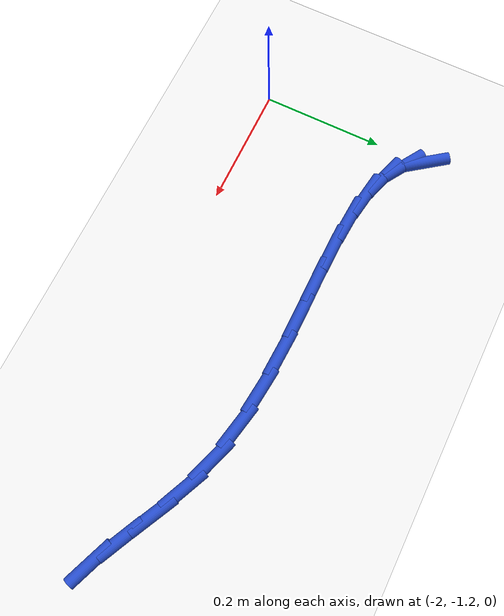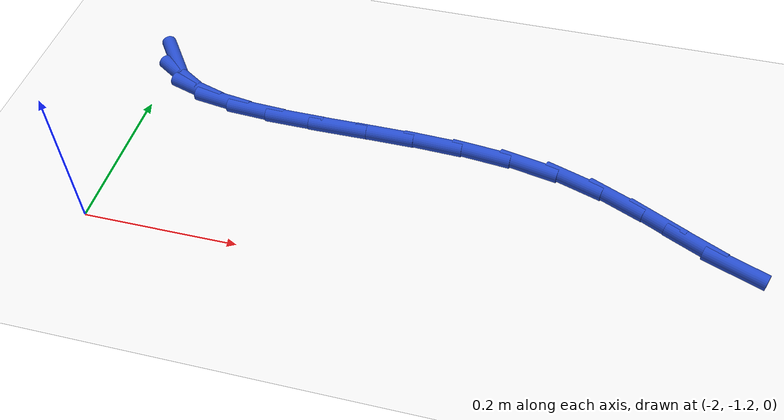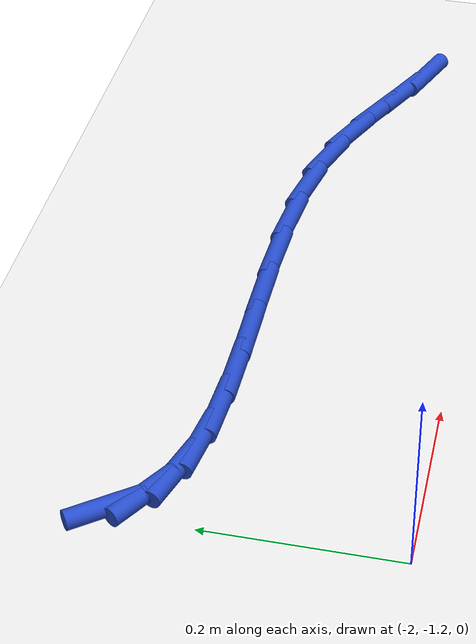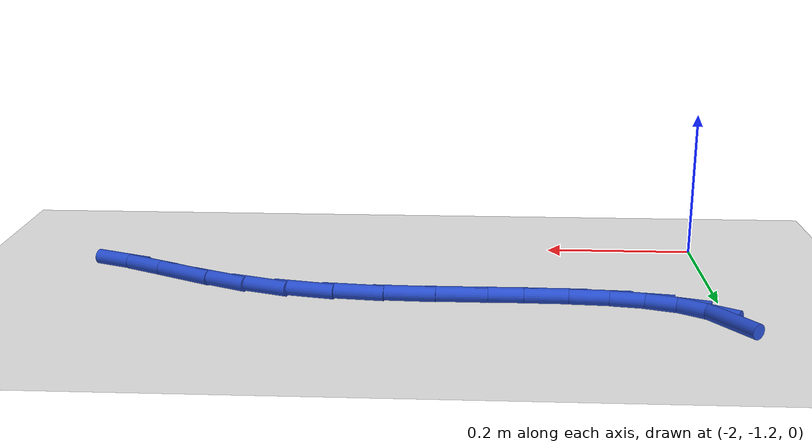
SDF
<sdf version="1.6">
 <world name="default">
  <model name="ground_plane">
   <static>1</static>
   <link name="link">
    <collision name="collision">
     <geometry><plane><normal>0 0 1</normal><size>100 100</size></plane></geometry>
     <surface><friction><ode><mu>100</mu><mu2>50</mu2></ode></friction></surface>
    </collision>
    <visual name="visual">
     <cast_shadows>0</cast_shadows>
     <geometry><plane><normal>0 0 1</normal><size>100 100</size></plane></geometry>
     <material>
      <script><uri>file://media/materials/scripts/gazebo.material</uri><name>Gazebo/WhiteGlow</name></script>
     </material>
    </visual>
   </link>
  </model>
  <model name="line">
   <link name="link_82">
    <pose>-1.998404253611071 -0.9151580391471993 0.01 0 1.57 -0.932881115643173</pose>
    <collision name="collision">
     <geometry><cylinder><radius>0.01</radius><length>0.08</length></cylinder></geometry>
    </collision>
    <visual name="visual">
     <material>
      <script><name>Gazebo/Blue</name><uri>file://media/materials/scripts/gazebo.material</uri></script>
     </material>
     <geometry><cylinder><radius>0.01</radius><length>0.08</length></cylinder></geometry>
    </visual>
   </link>
   <link name="link_83">
    <pose>-1.9763753910214394 -0.9448742326402765 0.01 0 1.57 -0.5589556336698283</pose>
    <collision name="collision">
     <geometry><cylinder><radius>0.01</radius><length>0.08</length></cylinder></geometry>
    </collision>
    <visual name="visual">
     <material>
      <script><name>Gazebo/Blue</name><uri>file://media/materials/scripts/gazebo.material</uri></script>
     </material>
     <geometry><cylinder><radius>0.01</radius><length>0.08</length></cylinder></geometry>
    </visual>
   </link>
   <link name="link_84">
    <pose>-1.943292644380378 -0.965567345615158 0.01 0 1.57 -0.3025468930642826</pose>
    <collision name="collision">
     <geometry><cylinder><radius>0.01</radius><length>0.08</length></cylinder></geometry>
    </collision>
    <visual name="visual">
     <material>
      <script><name>Gazebo/Blue</name><uri>file://media/materials/scripts/gazebo.material</uri></script>
     </material>
     <geometry><cylinder><radius>0.01</radius><length>0.08</length></cylinder></geometry>
    </visual>
   </link>
   <link name="link_85">
    <pose>-1.9007600394313051 -0.9788430075514056 0.01 0 1.57 -0.14719301802026089</pose>
    <collision name="collision">
     <geometry><cylinder><radius>0.01</radius><length>0.08</length></cylinder></geometry>
    </collision>
    <visual name="visual">
     <material>
      <script><name>Gazebo/Blue</name><uri>file://media/materials/scripts/gazebo.material</uri></script>
     </material>
     <geometry><cylinder><radius>0.01</radius><length>0.08</length></cylinder></geometry>
    </visual>
   </link>
   <link name="link_86">
    <pose>-1.8503875262607075 -0.9863115048079426 0.01 0 1.57 -0.05773569309302215</pose>
    <collision name="collision">
     <geometry><cylinder><radius>0.01</radius><length>0.08</length></cylinder></geometry>
    </collision>
    <visual name="visual">
     <material>
      <script><name>Gazebo/Blue</name><uri>file://media/materials/scripts/gazebo.material</uri></script>
     </material>
     <geometry><cylinder><radius>0.01</radius><length>0.08</length></cylinder></geometry>
    </visual>
   </link>
   <link name="link_87">
    <pose>-1.7937850549550742 -0.9895831237436913 0.01 0 1.57 -0.01118867441353531</pose>
    <collision name="collision">
     <geometry><cylinder><radius>0.01</radius><length>0.08</length></cylinder></geometry>
    </collision>
    <visual name="visual">
     <material>
      <script><name>Gazebo/Blue</name><uri>file://media/materials/scripts/gazebo.material</uri></script>
     </material>
     <geometry><cylinder><radius>0.01</radius><length>0.08</length></cylinder></geometry>
    </visual>
   </link>
   <link name="link_88">
    <pose>-1.7325625756008924 -0.9902681507175748 0.01 0 1.57 0.004534720947328678</pose>
    <collision name="collision">
     <geometry><cylinder><radius>0.01</radius><length>0.08</length></cylinder></geometry>
    </collision>
    <visual name="visual">
     <material>
      <script><name>Gazebo/Blue</name><uri>file://media/materials/scripts/gazebo.material</uri></script>
     </material>
     <geometry><cylinder><radius>0.01</radius><length>0.08</length></cylinder></geometry>
    </visual>
   </link>
   <link name="link_89">
    <pose>-1.6683300382846502 -0.9899768720885158 0.01 0 1.57 -0.005221471898071363</pose>
    <collision name="collision">
     <geometry><cylinder><radius>0.01</radius><length>0.08</length></cylinder></geometry>
    </collision>
    <visual name="visual">
     <material>
      <script><name>Gazebo/Blue</name><uri>file://media/materials/scripts/gazebo.material</uri></script>
     </material>
     <geometry><cylinder><radius>0.01</radius><length>0.08</length></cylinder></geometry>
    </visual>
   </link>
   <link name="link_90">
    <pose>-1.6026973930928339 -0.9903195742154371 0.01 0 1.57 -0.039521727342768265</pose>
    <collision name="collision">
     <geometry><cylinder><radius>0.01</radius><length>0.08</length></cylinder></geometry>
    </collision>
    <visual name="visual">
     <material>
      <script><name>Gazebo/Blue</name><uri>file://media/materials/scripts/gazebo.material</uri></script>
     </material>
     <geometry><cylinder><radius>0.01</radius><length>0.08</length></cylinder></geometry>
    </visual>
   </link>
   <link name="link_91">
    <pose>-1.537274590111932 -0.9929065434572619 0.01 0 1.57 -0.10093285779292706</pose>
    <collision name="collision">
     <geometry><cylinder><radius>0.01</radius><length>0.08</length></cylinder></geometry>
    </collision>
    <visual name="visual">
     <material>
      <script><name>Gazebo/Blue</name><uri>file://media/materials/scripts/gazebo.material</uri></script>
     </material>
     <geometry><cylinder><radius>0.01</radius><length>0.08</length></cylinder></geometry>
    </visual>
   </link>
   <link name="link_92">
    <pose>-1.4736715794284334 -0.9993480661729128 0.01 0 1.57 -0.19534469463696832</pose>
    <collision name="collision">
     <geometry><cylinder><radius>0.01</radius><length>0.08</length></cylinder></geometry>
    </collision>
    <visual name="visual">
     <material>
      <script><name>Gazebo/Blue</name><uri>file://media/materials/scripts/gazebo.material</uri></script>
     </material>
     <geometry><cylinder><radius>0.01</radius><length>0.08</length></cylinder></geometry>
    </visual>
   </link>
   <link name="link_93">
    <pose>-1.413498311128825 -1.0112544287213128 0.01 0 1.57 -0.32088536971315895</pose>
    <collision name="collision">
     <geometry><cylinder><radius>0.01</radius><length>0.08</length></cylinder></geometry>
    </collision>
    <visual name="visual">
     <material>
      <script><name>Gazebo/Blue</name><uri>file://media/materials/scripts/gazebo.material</uri></script>
     </material>
     <geometry><cylinder><radius>0.01</radius><length>0.08</length></cylinder></geometry>
    </visual>
   </link>
   <link name="link_94">
    <pose>-1.3580180307038645 -1.029694536794448 0.01 0 1.57 -0.42025129421100943</pose>
    <collision name="collision">
     <geometry><cylinder><radius>0.01</radius><length>0.08</length></cylinder></geometry>
    </collision>
    <visual name="visual">
     <material>
      <script><name>Gazebo/Blue</name><uri>file://media/materials/scripts/gazebo.material</uri></script>
     </material>
     <geometry><cylinder><radius>0.01</radius><length>0.08</length></cylinder></geometry>
    </visual>
   </link>
   <link name="link_95">
    <pose>-1.3065462673589248 -1.052695929011078 0.01 0 1.57 -0.4655341122439316</pose>
    <collision name="collision">
     <geometry><cylinder><radius>0.01</radius><length>0.08</length></cylinder></geometry>
    </collision>
    <visual name="visual">
     <material>
      <script><name>Gazebo/Blue</name><uri>file://media/materials/scripts/gazebo.material</uri></script>
     </material>
     <geometry><cylinder><radius>0.01</radius><length>0.08</length></cylinder></geometry>
    </visual>
   </link>
   <link name="link_96">
    <pose>-1.2577188978426062 -1.0772248638544704 0.01 0 1.57 -0.4509107028812123</pose>
    <collision name="collision">
     <geometry><cylinder><radius>0.01</radius><length>0.08</length></cylinder></geometry>
    </collision>
    <visual name="visual">
     <material>
      <script><name>Gazebo/Blue</name><uri>file://media/materials/scripts/gazebo.material</uri></script>
     </material>
     <geometry><cylinder><radius>0.01</radius><length>0.08</length></cylinder></geometry>
    </visual>
   </link>
   <link name="link_97">
    <pose>-1.210171094913382 -1.100246500524382 0.01 0 1.57 -0.37008060429011125</pose>
    <collision name="collision">
     <geometry><cylinder><radius>0.01</radius><length>0.08</length></cylinder></geometry>
    </collision>
    <visual name="visual">
     <material>
      <script><name>Gazebo/Blue</name><uri>file://media/materials/scripts/gazebo.material</uri></script>
     </material>
     <geometry><cylinder><radius>0.01</radius><length>0.08</length></cylinder></geometry>
    </visual>
   </link>
  </model>
 </world>
</sdf>
